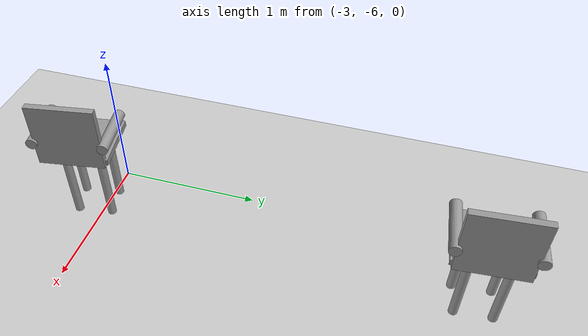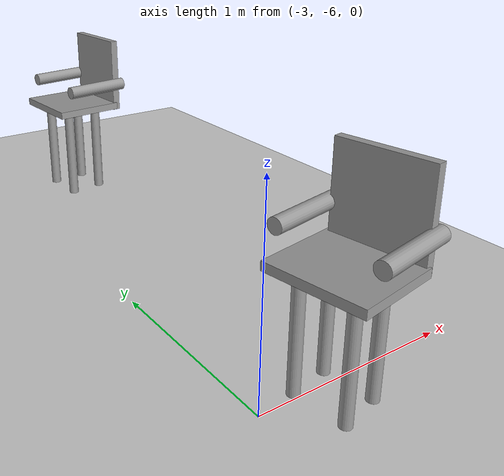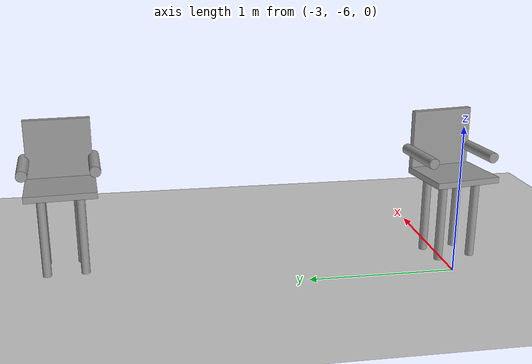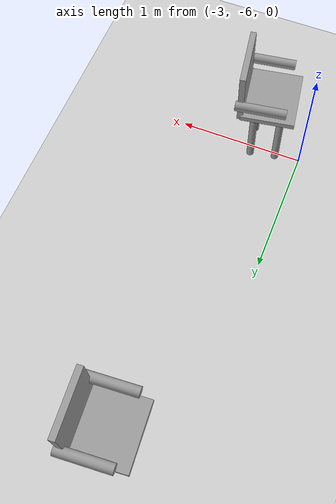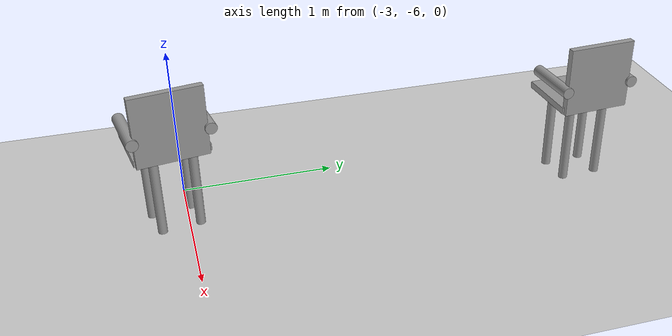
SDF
<sdf version="1.6">
 <world name="default">
  <model name="ground_plane">
   <static>1</static>
   <link name="link">
    <collision name="collision">
     <geometry><plane><normal>0 0 1</normal><size>100 100</size></plane></geometry>
     <surface>
      <contact><collide_bitmask>65535</collide_bitmask></contact>
      <friction><ode><mu>100</mu><mu2>50</mu2></ode></friction>
     </surface>
    </collision>
    <visual name="visual">
     <cast_shadows>0</cast_shadows>
     <geometry><plane><normal>0 0 1</normal><size>100 100</size></plane></geometry>
     <material>
      <script><uri>file://media/materials/scripts/gazebo.material</uri><name>Gazebo/Grey</name></script>
     </material>
    </visual>
   </link>
  </model>
  <model name="chair">
   <link name="link_4">
    <inertial>
     <mass>0.00194051</mass>
     <inertia>
      <ixx>5.14044e-05</ixx>
      <ixy>0</ixy>
      <ixz>0</ixz>
      <iyy>5.14044e-05</iyy>
      <iyz>0</iyz>
      <izz>8.34973e-07</izz>
     </inertia>
    </inertial>
    <pose>-0.140129 -0.127166 -0.209129 0 -0 0</pose>
    <visual name="visual">
     <geometry><cylinder><radius>0.0293355</radius><length>0.561516</length></cylinder></geometry>
     <material>
      <lighting>1</lighting>
      <script><uri>file://media/materials/scripts/gazebo.material</uri><name>Gazebo/Grey</name></script>
      <emissive>0 0 0 1</emissive>
     </material>
    </visual>
    <collision name="collision">
     <geometry><cylinder><radius>0.029336</radius><length>0.561516</length></cylinder></geometry>
     <surface>
      <friction>
       <ode><mu>1</mu><mu2>1</mu2><fdir1>0 0 0</fdir1><slip1>0</slip1><slip2>0</slip2></ode>
       <torsional>
        <coefficient>1</coefficient>
        <patch_radius>0</patch_radius>
        <surface_radius>0</surface_radius>
        <use_patch_radius>1</use_patch_radius>
        <ode><slip>0</slip></ode>
       </torsional>
      </friction>
      <bounce><restitution_coefficient>0</restitution_coefficient><threshold>1e+06</threshold></bounce>
      <contact>
       <collide_without_contact>0</collide_without_contact>
       <collide_without_contact_bitmask>1</collide_without_contact_bitmask>
       <collide_bitmask>1</collide_bitmask>
       <ode>
        <soft_cfm>0</soft_cfm>
        <soft_erp>0.2</soft_erp>
        <kp>1e+13</kp>
        <kd>1</kd>
        <max_vel>0.01</max_vel>
        <min_depth>0</min_depth>
       </ode>
       <bullet>
        <split_impulse>1</split_impulse>
        <split_impulse_penetration_threshold>-0.01</split_impulse_penetration_threshold>
        <soft_cfm>0</soft_cfm>
        <soft_erp>0.2</soft_erp>
        <kp>1e+13</kp>
        <kd>1</kd>
       </bullet>
      </contact>
     </surface>
    </collision>
   </link>
   <link name="link_4_clone">
    <inertial>
     <mass>0.00194051</mass>
     <inertia>
      <ixx>5.14044e-05</ixx>
      <ixy>0</ixy>
      <ixz>0</ixz>
      <iyy>5.14044e-05</iyy>
      <iyz>0</iyz>
      <izz>8.34973e-07</izz>
     </inertia>
    </inertial>
    <pose>-0.139565 0.126187 -0.209129 0 -0 0</pose>
    <visual name="visual">
     <geometry><cylinder><radius>0.0293355</radius><length>0.561516</length></cylinder></geometry>
     <material>
      <lighting>1</lighting>
      <script><uri>file://media/materials/scripts/gazebo.material</uri><name>Gazebo/Grey</name></script>
      <shader type="pixel"/>
      <emissive>0 0 0 1</emissive>
     </material>
    </visual>
    <collision name="collision">
     <geometry><cylinder><radius>0.029336</radius><length>0.561516</length></cylinder></geometry>
     <surface>
      <friction>
       <ode><mu>1</mu><mu2>1</mu2><fdir1>0 0 0</fdir1><slip1>0</slip1><slip2>0</slip2></ode>
       <torsional>
        <coefficient>1</coefficient>
        <patch_radius>0</patch_radius>
        <surface_radius>0</surface_radius>
        <use_patch_radius>1</use_patch_radius>
        <ode><slip>0</slip></ode>
       </torsional>
      </friction>
      <bounce><restitution_coefficient>0</restitution_coefficient><threshold>1e+06</threshold></bounce>
      <contact>
       <collide_without_contact>0</collide_without_contact>
       <collide_without_contact_bitmask>1</collide_without_contact_bitmask>
       <collide_bitmask>1</collide_bitmask>
       <ode>
        <soft_cfm>0</soft_cfm>
        <soft_erp>0.2</soft_erp>
        <kp>1e+13</kp>
        <kd>1</kd>
        <max_vel>0.01</max_vel>
        <min_depth>0</min_depth>
       </ode>
       <bullet>
        <split_impulse>1</split_impulse>
        <split_impulse_penetration_threshold>-0.01</split_impulse_penetration_threshold>
        <soft_cfm>0</soft_cfm>
        <soft_erp>0.2</soft_erp>
        <kp>1e+13</kp>
        <kd>1</kd>
       </bullet>
      </contact>
     </surface>
    </collision>
   </link>
   <link name="link_4_clone_0">
    <inertial>
     <mass>0.00194051</mass>
     <inertia>
      <ixx>5.14044e-05</ixx>
      <ixy>0</ixy>
      <ixz>0</ixz>
      <iyy>5.14044e-05</iyy>
      <iyz>0</iyz>
      <izz>8.34973e-07</izz>
     </inertia>
    </inertial>
    <pose>0.062929 0.13105 -0.209129 0 -0 0</pose>
    <visual name="visual">
     <geometry><cylinder><radius>0.0293355</radius><length>0.561516</length></cylinder></geometry>
     <material>
      <lighting>1</lighting>
      <script><uri>file://media/materials/scripts/gazebo.material</uri><name>Gazebo/Grey</name></script>
      <shader type="pixel"/>
      <emissive>0 0 0 1</emissive>
     </material>
    </visual>
    <collision name="collision">
     <geometry><cylinder><radius>0.029336</radius><length>0.561516</length></cylinder></geometry>
     <surface>
      <friction>
       <ode><mu>1</mu><mu2>1</mu2><fdir1>0 0 0</fdir1><slip1>0</slip1><slip2>0</slip2></ode>
       <torsional>
        <coefficient>1</coefficient>
        <patch_radius>0</patch_radius>
        <surface_radius>0</surface_radius>
        <use_patch_radius>1</use_patch_radius>
        <ode><slip>0</slip></ode>
       </torsional>
      </friction>
      <bounce><restitution_coefficient>0</restitution_coefficient><threshold>1e+06</threshold></bounce>
      <contact>
       <collide_without_contact>0</collide_without_contact>
       <collide_without_contact_bitmask>1</collide_without_contact_bitmask>
       <collide_bitmask>1</collide_bitmask>
       <ode>
        <soft_cfm>0</soft_cfm>
        <soft_erp>0.2</soft_erp>
        <kp>1e+13</kp>
        <kd>1</kd>
        <max_vel>0.01</max_vel>
        <min_depth>0</min_depth>
       </ode>
       <bullet>
        <split_impulse>1</split_impulse>
        <split_impulse_penetration_threshold>-0.01</split_impulse_penetration_threshold>
        <soft_cfm>0</soft_cfm>
        <soft_erp>0.2</soft_erp>
        <kp>1e+13</kp>
        <kd>1</kd>
       </bullet>
      </contact>
     </surface>
    </collision>
   </link>
   <link name="link_4_clone_1">
    <inertial>
     <mass>0.00194051</mass>
     <inertia>
      <ixx>5.14044e-05</ixx>
      <ixy>0</ixy>
      <ixz>0</ixz>
      <iyy>5.14044e-05</iyy>
      <iyz>0</iyz>
      <izz>8.34973e-07</izz>
     </inertia>
    </inertial>
    <pose>0.061641 -0.111934 -0.209129 0 -0 0</pose>
    <visual name="visual">
     <geometry><cylinder><radius>0.0293355</radius><length>0.561516</length></cylinder></geometry>
     <material>
      <lighting>1</lighting>
      <script><uri>file://media/materials/scripts/gazebo.material</uri><name>Gazebo/Grey</name></script>
      <shader type="pixel"/>
      <emissive>0 0 0 1</emissive>
     </material>
    </visual>
    <collision name="collision">
     <geometry><cylinder><radius>0.029336</radius><length>0.561516</length></cylinder></geometry>
     <surface>
      <friction>
       <ode><mu>1</mu><mu2>1</mu2><fdir1>0 0 0</fdir1><slip1>0</slip1><slip2>0</slip2></ode>
       <torsional>
        <coefficient>1</coefficient>
        <patch_radius>0</patch_radius>
        <surface_radius>0</surface_radius>
        <use_patch_radius>1</use_patch_radius>
        <ode><slip>0</slip></ode>
       </torsional>
      </friction>
      <bounce><restitution_coefficient>0</restitution_coefficient><threshold>1e+06</threshold></bounce>
      <contact>
       <collide_without_contact>0</collide_without_contact>
       <collide_without_contact_bitmask>1</collide_without_contact_bitmask>
       <collide_bitmask>1</collide_bitmask>
       <ode>
        <soft_cfm>0</soft_cfm>
        <soft_erp>0.2</soft_erp>
        <kp>1e+13</kp>
        <kd>1</kd>
        <max_vel>0.01</max_vel>
        <min_depth>0</min_depth>
       </ode>
       <bullet>
        <split_impulse>1</split_impulse>
        <split_impulse_penetration_threshold>-0.01</split_impulse_penetration_threshold>
        <soft_cfm>0</soft_cfm>
        <soft_erp>0.2</soft_erp>
        <kp>1e+13</kp>
        <kd>1</kd>
       </bullet>
      </contact>
     </surface>
    </collision>
   </link>
   <link name="link_5">
    <inertial>
     <mass>0.00816884</mass>
     <inertia>
      <ixx>0.00015002</ixx>
      <ixy>0</ixy>
      <ixz>0</ixz>
      <iyy>0.000115328</iyy>
      <iyz>0</iyz>
      <izz>0.000262862</izz>
     </inertia>
    </inertial>
    <pose>-0.041662 -0.005028 0.089077 0 -0 0</pose>
    <visual name="visual">
     <geometry><box><size>0.409378 0.467496 0.042729</size></box></geometry>
     <material>
      <lighting>1</lighting>
      <script><uri>file://media/materials/scripts/gazebo.material</uri><name>Gazebo/Grey</name></script>
      <emissive>0 0 0 1</emissive>
     </material>
    </visual>
    <collision name="collision">
     <geometry><box><size>0.409378 0.467496 0.042729</size></box></geometry>
     <surface>
      <friction>
       <ode><mu>1</mu><mu2>1</mu2><fdir1>0 0 0</fdir1><slip1>0</slip1><slip2>0</slip2></ode>
       <torsional>
        <coefficient>1</coefficient>
        <patch_radius>0</patch_radius>
        <surface_radius>0</surface_radius>
        <use_patch_radius>1</use_patch_radius>
        <ode><slip>0</slip></ode>
       </torsional>
      </friction>
      <bounce><restitution_coefficient>0</restitution_coefficient><threshold>1e+06</threshold></bounce>
      <contact>
       <collide_without_contact>0</collide_without_contact>
       <collide_without_contact_bitmask>1</collide_without_contact_bitmask>
       <collide_bitmask>1</collide_bitmask>
       <ode>
        <soft_cfm>0</soft_cfm>
        <soft_erp>0.2</soft_erp>
        <kp>1e+13</kp>
        <kd>1</kd>
        <max_vel>0.01</max_vel>
        <min_depth>0</min_depth>
       </ode>
       <bullet>
        <split_impulse>1</split_impulse>
        <split_impulse_penetration_threshold>-0.01</split_impulse_penetration_threshold>
        <soft_cfm>0</soft_cfm>
        <soft_erp>0.2</soft_erp>
        <kp>1e+13</kp>
        <kd>1</kd>
       </bullet>
      </contact>
     </surface>
    </collision>
   </link>
   <link name="link_6">
    <inertial>
     <mass>0.00855687</mass>
     <inertia>
      <ixx>0.000285159</ixx>
      <ixy>0</ixy>
      <ixz>0</ixz>
      <iyy>0.000146983</iyy>
      <iyz>0</iyz>
      <izz>0.000140925</izz>
     </inertia>
    </inertial>
    <pose>0.165697 -0.006458 0.287866 0 -0 0</pose>
    <visual name="visual">
     <geometry><box><size>0.0439 0.442383 0.451884</size></box></geometry>
     <material>
      <lighting>1</lighting>
      <script><uri>file://media/materials/scripts/gazebo.material</uri><name>Gazebo/Grey</name></script>
      <emissive>0 0 0 1</emissive>
     </material>
    </visual>
    <collision name="collision">
     <geometry><box><size>0.0439 0.442383 0.451884</size></box></geometry>
     <surface>
      <friction>
       <ode><mu>1</mu><mu2>1</mu2><fdir1>0 0 0</fdir1><slip1>0</slip1><slip2>0</slip2></ode>
       <torsional>
        <coefficient>1</coefficient>
        <patch_radius>0</patch_radius>
        <surface_radius>0</surface_radius>
        <use_patch_radius>1</use_patch_radius>
        <ode><slip>0</slip></ode>
       </torsional>
      </friction>
      <bounce><restitution_coefficient>0</restitution_coefficient><threshold>1e+06</threshold></bounce>
      <contact>
       <collide_without_contact>0</collide_without_contact>
       <collide_without_contact_bitmask>1</collide_without_contact_bitmask>
       <collide_bitmask>1</collide_bitmask>
       <ode>
        <soft_cfm>0</soft_cfm>
        <soft_erp>0.2</soft_erp>
        <kp>1e+13</kp>
        <kd>1</kd>
        <max_vel>0.01</max_vel>
        <min_depth>0</min_depth>
       </ode>
       <bullet>
        <split_impulse>1</split_impulse>
        <split_impulse_penetration_threshold>-0.01</split_impulse_penetration_threshold>
        <soft_cfm>0</soft_cfm>
        <soft_erp>0.2</soft_erp>
        <kp>1e+13</kp>
        <kd>1</kd>
       </bullet>
      </contact>
     </surface>
    </collision>
   </link>
   <link name="link_7">
    <inertial>
     <mass>0.00209129</mass>
     <inertia>
      <ixx>2.57536e-05</ixx>
      <ixy>0</ixy>
      <ixz>0</ixz>
      <iyy>2.57536e-05</iyy>
      <iyz>0</iyz>
      <izz>1.44551e-06</izz>
     </inertia>
    </inertial>
    <pose>0.0147 0.228665 0.230372 0 1.55081 0</pose>
    <visual name="visual">
     <geometry><cylinder><radius>0.0371808</radius><length>0.378984</length></cylinder></geometry>
     <material>
      <lighting>1</lighting>
      <script><uri>file://media/materials/scripts/gazebo.material</uri><name>Gazebo/Grey</name></script>
      <emissive>0 0 0 1</emissive>
     </material>
    </visual>
    <collision name="collision">
     <geometry><cylinder><radius>0.037181</radius><length>0.378984</length></cylinder></geometry>
     <surface>
      <friction>
       <ode><mu>1</mu><mu2>1</mu2><fdir1>0 0 0</fdir1><slip1>0</slip1><slip2>0</slip2></ode>
       <torsional>
        <coefficient>1</coefficient>
        <patch_radius>0</patch_radius>
        <surface_radius>0</surface_radius>
        <use_patch_radius>1</use_patch_radius>
        <ode><slip>0</slip></ode>
       </torsional>
      </friction>
      <bounce><restitution_coefficient>0</restitution_coefficient><threshold>1e+06</threshold></bounce>
      <contact>
       <collide_without_contact>0</collide_without_contact>
       <collide_without_contact_bitmask>1</collide_without_contact_bitmask>
       <collide_bitmask>1</collide_bitmask>
       <ode>
        <soft_cfm>0</soft_cfm>
        <soft_erp>0.2</soft_erp>
        <kp>1e+13</kp>
        <kd>1</kd>
        <max_vel>0.01</max_vel>
        <min_depth>0</min_depth>
       </ode>
       <bullet>
        <split_impulse>1</split_impulse>
        <split_impulse_penetration_threshold>-0.01</split_impulse_penetration_threshold>
        <soft_cfm>0</soft_cfm>
        <soft_erp>0.2</soft_erp>
        <kp>1e+13</kp>
        <kd>1</kd>
       </bullet>
      </contact>
     </surface>
    </collision>
   </link>
   <link name="link_7_clone">
    <inertial>
     <mass>0.00209129</mass>
     <inertia>
      <ixx>2.57536e-05</ixx>
      <ixy>0</ixy>
      <ixz>0</ixz>
      <iyy>2.57536e-05</iyy>
      <iyz>0</iyz>
      <izz>1.44551e-06</izz>
     </inertia>
    </inertial>
    <pose>0.01639 -0.235319 0.229201 0 1.55081 0</pose>
    <visual name="visual">
     <geometry><cylinder><radius>0.0371808</radius><length>0.378984</length></cylinder></geometry>
     <material>
      <lighting>1</lighting>
      <script><uri>file://media/materials/scripts/gazebo.material</uri><name>Gazebo/Grey</name></script>
      <shader type="pixel"/>
      <emissive>0 0 0 1</emissive>
     </material>
    </visual>
    <collision name="collision">
     <geometry><cylinder><radius>0.037181</radius><length>0.378984</length></cylinder></geometry>
     <surface>
      <friction>
       <ode><mu>1</mu><mu2>1</mu2><fdir1>0 0 0</fdir1><slip1>0</slip1><slip2>0</slip2></ode>
       <torsional>
        <coefficient>1</coefficient>
        <patch_radius>0</patch_radius>
        <surface_radius>0</surface_radius>
        <use_patch_radius>1</use_patch_radius>
        <ode><slip>0</slip></ode>
       </torsional>
      </friction>
      <bounce><restitution_coefficient>0</restitution_coefficient><threshold>1e+06</threshold></bounce>
      <contact>
       <collide_without_contact>0</collide_without_contact>
       <collide_without_contact_bitmask>1</collide_without_contact_bitmask>
       <collide_bitmask>1</collide_bitmask>
       <ode>
        <soft_cfm>0</soft_cfm>
        <soft_erp>0.2</soft_erp>
        <kp>1e+13</kp>
        <kd>1</kd>
        <max_vel>0.01</max_vel>
        <min_depth>0</min_depth>
       </ode>
       <bullet>
        <split_impulse>1</split_impulse>
        <split_impulse_penetration_threshold>-0.01</split_impulse_penetration_threshold>
        <soft_cfm>0</soft_cfm>
        <soft_erp>0.2</soft_erp>
        <kp>1e+13</kp>
        <kd>1</kd>
       </bullet>
      </contact>
     </surface>
    </collision>
   </link>
   <joint name="link_5_JOINT_2" type="fixed">
    <parent>link_5</parent>
    <child>link_4_clone_1</child>
    <physics>
     <ode><limit><cfm>0</cfm><erp>0.2</erp></limit><suspension><cfm>0</cfm><erp>0.2</erp></suspension></ode>
    </physics>
   </joint>
   <joint name="link_5_JOINT_3" type="fixed">
    <parent>link_5</parent>
    <child>link_4</child>
    <physics>
     <ode><limit><cfm>0</cfm><erp>0.2</erp></limit><suspension><cfm>0</cfm><erp>0.2</erp></suspension></ode>
    </physics>
   </joint>
   <joint name="link_5_JOINT_4" type="fixed">
    <parent>link_5</parent>
    <child>link_4_clone_0</child>
    <physics>
     <ode><limit><cfm>0</cfm><erp>0.2</erp></limit><suspension><cfm>0</cfm><erp>0.2</erp></suspension></ode>
    </physics>
   </joint>
   <joint name="link_5_JOINT_5" type="fixed">
    <parent>link_5</parent>
    <child>link_4_clone</child>
    <physics>
     <ode><limit><cfm>0</cfm><erp>0.2</erp></limit><suspension><cfm>0</cfm><erp>0.2</erp></suspension></ode>
    </physics>
   </joint>
   <joint name="link_5_JOINT_6" type="fixed">
    <parent>link_5</parent>
    <child>link_6</child>
    <physics>
     <ode><limit><cfm>0</cfm><erp>0.2</erp></limit><suspension><cfm>0</cfm><erp>0.2</erp></suspension></ode>
    </physics>
   </joint>
   <joint name="link_5_JOINT_7" type="fixed">
    <parent>link_5</parent>
    <child>link_7</child>
    <physics>
     <ode><limit><cfm>0</cfm><erp>0.2</erp></limit><suspension><cfm>0</cfm><erp>0.2</erp></suspension></ode>
    </physics>
   </joint>
   <joint name="link_5_JOINT_8" type="fixed">
    <parent>link_5</parent>
    <child>link_7_clone</child>
    <physics>
     <ode><limit><cfm>0</cfm><erp>0.2</erp></limit><suspension><cfm>0</cfm><erp>0.2</erp></suspension></ode>
    </physics>
   </joint>
   <static>0</static>
   <pose>-2.51324 -3.39211 0.489878 -0 3.3e-05 0.07622</pose>
  </model>
  <model name="chair_clone_2">
   <link name="link_4">
    <inertial>
     <mass>0.00194051</mass>
     <inertia>
      <ixx>5.14044e-05</ixx>
      <ixy>0</ixy>
      <ixz>0</ixz>
      <iyy>5.14044e-05</iyy>
      <iyz>0</iyz>
      <izz>8.34973e-07</izz>
     </inertia>
    </inertial>
    <pose>-0.140129 -0.127166 -0.209129 0 -0 0</pose>
    <visual name="visual">
     <geometry><cylinder><radius>0.0293355</radius><length>0.561516</length></cylinder></geometry>
     <material>
      <lighting>1</lighting>
      <script><uri>file://media/materials/scripts/gazebo.material</uri><name>Gazebo/Grey</name></script>
      <emissive>0 0 0 1</emissive>
     </material>
    </visual>
    <collision name="collision">
     <geometry><cylinder><radius>0.029336</radius><length>0.561516</length></cylinder></geometry>
     <surface>
      <friction>
       <ode><mu>1</mu><mu2>1</mu2><fdir1>0 0 0</fdir1><slip1>0</slip1><slip2>0</slip2></ode>
       <torsional>
        <coefficient>1</coefficient>
        <patch_radius>0</patch_radius>
        <surface_radius>0</surface_radius>
        <use_patch_radius>1</use_patch_radius>
        <ode><slip>0</slip></ode>
       </torsional>
      </friction>
      <bounce><restitution_coefficient>0</restitution_coefficient><threshold>1e+06</threshold></bounce>
      <contact>
       <collide_without_contact>0</collide_without_contact>
       <collide_without_contact_bitmask>1</collide_without_contact_bitmask>
       <collide_bitmask>1</collide_bitmask>
       <ode>
        <soft_cfm>0</soft_cfm>
        <soft_erp>0.2</soft_erp>
        <kp>1e+13</kp>
        <kd>1</kd>
        <max_vel>0.01</max_vel>
        <min_depth>0</min_depth>
       </ode>
       <bullet>
        <split_impulse>1</split_impulse>
        <split_impulse_penetration_threshold>-0.01</split_impulse_penetration_threshold>
        <soft_cfm>0</soft_cfm>
        <soft_erp>0.2</soft_erp>
        <kp>1e+13</kp>
        <kd>1</kd>
       </bullet>
      </contact>
     </surface>
    </collision>
   </link>
   <link name="link_4_clone">
    <inertial>
     <mass>0.00194051</mass>
     <inertia>
      <ixx>5.14044e-05</ixx>
      <ixy>0</ixy>
      <ixz>0</ixz>
      <iyy>5.14044e-05</iyy>
      <iyz>0</iyz>
      <izz>8.34973e-07</izz>
     </inertia>
    </inertial>
    <pose>-0.139565 0.126187 -0.209129 0 -0 0</pose>
    <visual name="visual">
     <geometry><cylinder><radius>0.0293355</radius><length>0.561516</length></cylinder></geometry>
     <material>
      <lighting>1</lighting>
      <script><uri>file://media/materials/scripts/gazebo.material</uri><name>Gazebo/Grey</name></script>
      <shader type="pixel"/>
      <emissive>0 0 0 1</emissive>
     </material>
    </visual>
    <collision name="collision">
     <geometry><cylinder><radius>0.029336</radius><length>0.561516</length></cylinder></geometry>
     <surface>
      <friction>
       <ode><mu>1</mu><mu2>1</mu2><fdir1>0 0 0</fdir1><slip1>0</slip1><slip2>0</slip2></ode>
       <torsional>
        <coefficient>1</coefficient>
        <patch_radius>0</patch_radius>
        <surface_radius>0</surface_radius>
        <use_patch_radius>1</use_patch_radius>
        <ode><slip>0</slip></ode>
       </torsional>
      </friction>
      <bounce><restitution_coefficient>0</restitution_coefficient><threshold>1e+06</threshold></bounce>
      <contact>
       <collide_without_contact>0</collide_without_contact>
       <collide_without_contact_bitmask>1</collide_without_contact_bitmask>
       <collide_bitmask>1</collide_bitmask>
       <ode>
        <soft_cfm>0</soft_cfm>
        <soft_erp>0.2</soft_erp>
        <kp>1e+13</kp>
        <kd>1</kd>
        <max_vel>0.01</max_vel>
        <min_depth>0</min_depth>
       </ode>
       <bullet>
        <split_impulse>1</split_impulse>
        <split_impulse_penetration_threshold>-0.01</split_impulse_penetration_threshold>
        <soft_cfm>0</soft_cfm>
        <soft_erp>0.2</soft_erp>
        <kp>1e+13</kp>
        <kd>1</kd>
       </bullet>
      </contact>
     </surface>
    </collision>
   </link>
   <link name="link_4_clone_0">
    <inertial>
     <mass>0.00194051</mass>
     <inertia>
      <ixx>5.14044e-05</ixx>
      <ixy>0</ixy>
      <ixz>0</ixz>
      <iyy>5.14044e-05</iyy>
      <iyz>0</iyz>
      <izz>8.34973e-07</izz>
     </inertia>
    </inertial>
    <pose>0.062929 0.13105 -0.209129 0 -0 0</pose>
    <visual name="visual">
     <geometry><cylinder><radius>0.0293355</radius><length>0.561516</length></cylinder></geometry>
     <material>
      <lighting>1</lighting>
      <script><uri>file://media/materials/scripts/gazebo.material</uri><name>Gazebo/Grey</name></script>
      <shader type="pixel"/>
      <emissive>0 0 0 1</emissive>
     </material>
    </visual>
    <collision name="collision">
     <geometry><cylinder><radius>0.029336</radius><length>0.561516</length></cylinder></geometry>
     <surface>
      <friction>
       <ode><mu>1</mu><mu2>1</mu2><fdir1>0 0 0</fdir1><slip1>0</slip1><slip2>0</slip2></ode>
       <torsional>
        <coefficient>1</coefficient>
        <patch_radius>0</patch_radius>
        <surface_radius>0</surface_radius>
        <use_patch_radius>1</use_patch_radius>
        <ode><slip>0</slip></ode>
       </torsional>
      </friction>
      <bounce><restitution_coefficient>0</restitution_coefficient><threshold>1e+06</threshold></bounce>
      <contact>
       <collide_without_contact>0</collide_without_contact>
       <collide_without_contact_bitmask>1</collide_without_contact_bitmask>
       <collide_bitmask>1</collide_bitmask>
       <ode>
        <soft_cfm>0</soft_cfm>
        <soft_erp>0.2</soft_erp>
        <kp>1e+13</kp>
        <kd>1</kd>
        <max_vel>0.01</max_vel>
        <min_depth>0</min_depth>
       </ode>
       <bullet>
        <split_impulse>1</split_impulse>
        <split_impulse_penetration_threshold>-0.01</split_impulse_penetration_threshold>
        <soft_cfm>0</soft_cfm>
        <soft_erp>0.2</soft_erp>
        <kp>1e+13</kp>
        <kd>1</kd>
       </bullet>
      </contact>
     </surface>
    </collision>
   </link>
   <link name="link_4_clone_1">
    <inertial>
     <mass>0.00194051</mass>
     <inertia>
      <ixx>5.14044e-05</ixx>
      <ixy>0</ixy>
      <ixz>0</ixz>
      <iyy>5.14044e-05</iyy>
      <iyz>0</iyz>
      <izz>8.34973e-07</izz>
     </inertia>
    </inertial>
    <pose>0.061641 -0.111934 -0.209129 0 -0 0</pose>
    <visual name="visual">
     <geometry><cylinder><radius>0.0293355</radius><length>0.561516</length></cylinder></geometry>
     <material>
      <lighting>1</lighting>
      <script><uri>file://media/materials/scripts/gazebo.material</uri><name>Gazebo/Grey</name></script>
      <shader type="pixel"/>
      <emissive>0 0 0 1</emissive>
     </material>
    </visual>
    <collision name="collision">
     <geometry><cylinder><radius>0.029336</radius><length>0.561516</length></cylinder></geometry>
     <surface>
      <friction>
       <ode><mu>1</mu><mu2>1</mu2><fdir1>0 0 0</fdir1><slip1>0</slip1><slip2>0</slip2></ode>
       <torsional>
        <coefficient>1</coefficient>
        <patch_radius>0</patch_radius>
        <surface_radius>0</surface_radius>
        <use_patch_radius>1</use_patch_radius>
        <ode><slip>0</slip></ode>
       </torsional>
      </friction>
      <bounce><restitution_coefficient>0</restitution_coefficient><threshold>1e+06</threshold></bounce>
      <contact>
       <collide_without_contact>0</collide_without_contact>
       <collide_without_contact_bitmask>1</collide_without_contact_bitmask>
       <collide_bitmask>1</collide_bitmask>
       <ode>
        <soft_cfm>0</soft_cfm>
        <soft_erp>0.2</soft_erp>
        <kp>1e+13</kp>
        <kd>1</kd>
        <max_vel>0.01</max_vel>
        <min_depth>0</min_depth>
       </ode>
       <bullet>
        <split_impulse>1</split_impulse>
        <split_impulse_penetration_threshold>-0.01</split_impulse_penetration_threshold>
        <soft_cfm>0</soft_cfm>
        <soft_erp>0.2</soft_erp>
        <kp>1e+13</kp>
        <kd>1</kd>
       </bullet>
      </contact>
     </surface>
    </collision>
   </link>
   <link name="link_5">
    <inertial>
     <mass>0.00816884</mass>
     <inertia>
      <ixx>0.00015002</ixx>
      <ixy>0</ixy>
      <ixz>0</ixz>
      <iyy>0.000115328</iyy>
      <iyz>0</iyz>
      <izz>0.000262862</izz>
     </inertia>
    </inertial>
    <pose>-0.041662 -0.005028 0.089077 0 -0 0</pose>
    <visual name="visual">
     <geometry><box><size>0.409378 0.467496 0.042729</size></box></geometry>
     <material>
      <lighting>1</lighting>
      <script><uri>file://media/materials/scripts/gazebo.material</uri><name>Gazebo/Grey</name></script>
      <emissive>0 0 0 1</emissive>
     </material>
    </visual>
    <collision name="collision">
     <geometry><box><size>0.409378 0.467496 0.042729</size></box></geometry>
     <surface>
      <friction>
       <ode><mu>1</mu><mu2>1</mu2><fdir1>0 0 0</fdir1><slip1>0</slip1><slip2>0</slip2></ode>
       <torsional>
        <coefficient>1</coefficient>
        <patch_radius>0</patch_radius>
        <surface_radius>0</surface_radius>
        <use_patch_radius>1</use_patch_radius>
        <ode><slip>0</slip></ode>
       </torsional>
      </friction>
      <bounce><restitution_coefficient>0</restitution_coefficient><threshold>1e+06</threshold></bounce>
      <contact>
       <collide_without_contact>0</collide_without_contact>
       <collide_without_contact_bitmask>1</collide_without_contact_bitmask>
       <collide_bitmask>1</collide_bitmask>
       <ode>
        <soft_cfm>0</soft_cfm>
        <soft_erp>0.2</soft_erp>
        <kp>1e+13</kp>
        <kd>1</kd>
        <max_vel>0.01</max_vel>
        <min_depth>0</min_depth>
       </ode>
       <bullet>
        <split_impulse>1</split_impulse>
        <split_impulse_penetration_threshold>-0.01</split_impulse_penetration_threshold>
        <soft_cfm>0</soft_cfm>
        <soft_erp>0.2</soft_erp>
        <kp>1e+13</kp>
        <kd>1</kd>
       </bullet>
      </contact>
     </surface>
    </collision>
   </link>
   <link name="link_6">
    <inertial>
     <mass>0.00855687</mass>
     <inertia>
      <ixx>0.000285159</ixx>
      <ixy>0</ixy>
      <ixz>0</ixz>
      <iyy>0.000146983</iyy>
      <iyz>0</iyz>
      <izz>0.000140925</izz>
     </inertia>
    </inertial>
    <pose>0.165697 -0.006458 0.287866 0 -0 0</pose>
    <visual name="visual">
     <geometry><box><size>0.0439 0.442383 0.451884</size></box></geometry>
     <material>
      <lighting>1</lighting>
      <script><uri>file://media/materials/scripts/gazebo.material</uri><name>Gazebo/Grey</name></script>
      <emissive>0 0 0 1</emissive>
     </material>
    </visual>
    <collision name="collision">
     <geometry><box><size>0.0439 0.442383 0.451884</size></box></geometry>
     <surface>
      <friction>
       <ode><mu>1</mu><mu2>1</mu2><fdir1>0 0 0</fdir1><slip1>0</slip1><slip2>0</slip2></ode>
       <torsional>
        <coefficient>1</coefficient>
        <patch_radius>0</patch_radius>
        <surface_radius>0</surface_radius>
        <use_patch_radius>1</use_patch_radius>
        <ode><slip>0</slip></ode>
       </torsional>
      </friction>
      <bounce><restitution_coefficient>0</restitution_coefficient><threshold>1e+06</threshold></bounce>
      <contact>
       <collide_without_contact>0</collide_without_contact>
       <collide_without_contact_bitmask>1</collide_without_contact_bitmask>
       <collide_bitmask>1</collide_bitmask>
       <ode>
        <soft_cfm>0</soft_cfm>
        <soft_erp>0.2</soft_erp>
        <kp>1e+13</kp>
        <kd>1</kd>
        <max_vel>0.01</max_vel>
        <min_depth>0</min_depth>
       </ode>
       <bullet>
        <split_impulse>1</split_impulse>
        <split_impulse_penetration_threshold>-0.01</split_impulse_penetration_threshold>
        <soft_cfm>0</soft_cfm>
        <soft_erp>0.2</soft_erp>
        <kp>1e+13</kp>
        <kd>1</kd>
       </bullet>
      </contact>
     </surface>
    </collision>
   </link>
   <link name="link_7">
    <inertial>
     <mass>0.00209129</mass>
     <inertia>
      <ixx>2.57536e-05</ixx>
      <ixy>0</ixy>
      <ixz>0</ixz>
      <iyy>2.57536e-05</iyy>
      <iyz>0</iyz>
      <izz>1.44551e-06</izz>
     </inertia>
    </inertial>
    <pose>0.0147 0.228665 0.230372 0 1.55081 0</pose>
    <visual name="visual">
     <geometry><cylinder><radius>0.0371808</radius><length>0.378984</length></cylinder></geometry>
     <material>
      <lighting>1</lighting>
      <script><uri>file://media/materials/scripts/gazebo.material</uri><name>Gazebo/Grey</name></script>
      <emissive>0 0 0 1</emissive>
     </material>
    </visual>
    <collision name="collision">
     <geometry><cylinder><radius>0.037181</radius><length>0.378984</length></cylinder></geometry>
     <surface>
      <friction>
       <ode><mu>1</mu><mu2>1</mu2><fdir1>0 0 0</fdir1><slip1>0</slip1><slip2>0</slip2></ode>
       <torsional>
        <coefficient>1</coefficient>
        <patch_radius>0</patch_radius>
        <surface_radius>0</surface_radius>
        <use_patch_radius>1</use_patch_radius>
        <ode><slip>0</slip></ode>
       </torsional>
      </friction>
      <bounce><restitution_coefficient>0</restitution_coefficient><threshold>1e+06</threshold></bounce>
      <contact>
       <collide_without_contact>0</collide_without_contact>
       <collide_without_contact_bitmask>1</collide_without_contact_bitmask>
       <collide_bitmask>1</collide_bitmask>
       <ode>
        <soft_cfm>0</soft_cfm>
        <soft_erp>0.2</soft_erp>
        <kp>1e+13</kp>
        <kd>1</kd>
        <max_vel>0.01</max_vel>
        <min_depth>0</min_depth>
       </ode>
       <bullet>
        <split_impulse>1</split_impulse>
        <split_impulse_penetration_threshold>-0.01</split_impulse_penetration_threshold>
        <soft_cfm>0</soft_cfm>
        <soft_erp>0.2</soft_erp>
        <kp>1e+13</kp>
        <kd>1</kd>
       </bullet>
      </contact>
     </surface>
    </collision>
   </link>
   <link name="link_7_clone">
    <inertial>
     <mass>0.00209129</mass>
     <inertia>
      <ixx>2.57536e-05</ixx>
      <ixy>0</ixy>
      <ixz>0</ixz>
      <iyy>2.57536e-05</iyy>
      <iyz>0</iyz>
      <izz>1.44551e-06</izz>
     </inertia>
    </inertial>
    <pose>0.01639 -0.235319 0.229201 0 1.55081 0</pose>
    <visual name="visual">
     <geometry><cylinder><radius>0.0371808</radius><length>0.378984</length></cylinder></geometry>
     <material>
      <lighting>1</lighting>
      <script><uri>file://media/materials/scripts/gazebo.material</uri><name>Gazebo/Grey</name></script>
      <shader type="pixel"/>
      <emissive>0 0 0 1</emissive>
     </material>
    </visual>
    <collision name="collision">
     <geometry><cylinder><radius>0.037181</radius><length>0.378984</length></cylinder></geometry>
     <surface>
      <friction>
       <ode><mu>1</mu><mu2>1</mu2><fdir1>0 0 0</fdir1><slip1>0</slip1><slip2>0</slip2></ode>
       <torsional>
        <coefficient>1</coefficient>
        <patch_radius>0</patch_radius>
        <surface_radius>0</surface_radius>
        <use_patch_radius>1</use_patch_radius>
        <ode><slip>0</slip></ode>
       </torsional>
      </friction>
      <bounce><restitution_coefficient>0</restitution_coefficient><threshold>1e+06</threshold></bounce>
      <contact>
       <collide_without_contact>0</collide_without_contact>
       <collide_without_contact_bitmask>1</collide_without_contact_bitmask>
       <collide_bitmask>1</collide_bitmask>
       <ode>
        <soft_cfm>0</soft_cfm>
        <soft_erp>0.2</soft_erp>
        <kp>1e+13</kp>
        <kd>1</kd>
        <max_vel>0.01</max_vel>
        <min_depth>0</min_depth>
       </ode>
       <bullet>
        <split_impulse>1</split_impulse>
        <split_impulse_penetration_threshold>-0.01</split_impulse_penetration_threshold>
        <soft_cfm>0</soft_cfm>
        <soft_erp>0.2</soft_erp>
        <kp>1e+13</kp>
        <kd>1</kd>
       </bullet>
      </contact>
     </surface>
    </collision>
   </link>
   <joint name="link_5_JOINT_2" type="fixed">
    <parent>link_5</parent>
    <child>link_4_clone_1</child>
    <physics>
     <ode><limit><cfm>0</cfm><erp>0.2</erp></limit><suspension><cfm>0</cfm><erp>0.2</erp></suspension></ode>
    </physics>
   </joint>
   <joint name="link_5_JOINT_3" type="fixed">
    <parent>link_5</parent>
    <child>link_4</child>
    <physics>
     <ode><limit><cfm>0</cfm><erp>0.2</erp></limit><suspension><cfm>0</cfm><erp>0.2</erp></suspension></ode>
    </physics>
   </joint>
   <joint name="link_5_JOINT_4" type="fixed">
    <parent>link_5</parent>
    <child>link_4_clone_0</child>
    <physics>
     <ode><limit><cfm>0</cfm><erp>0.2</erp></limit><suspension><cfm>0</cfm><erp>0.2</erp></suspension></ode>
    </physics>
   </joint>
   <joint name="link_5_JOINT_5" type="fixed">
    <parent>link_5</parent>
    <child>link_4_clone</child>
    <physics>
     <ode><limit><cfm>0</cfm><erp>0.2</erp></limit><suspension><cfm>0</cfm><erp>0.2</erp></suspension></ode>
    </physics>
   </joint>
   <joint name="link_5_JOINT_6" type="fixed">
    <parent>link_5</parent>
    <child>link_6</child>
    <physics>
     <ode><limit><cfm>0</cfm><erp>0.2</erp></limit><suspension><cfm>0</cfm><erp>0.2</erp></suspension></ode>
    </physics>
   </joint>
   <joint name="link_5_JOINT_7" type="fixed">
    <parent>link_5</parent>
    <child>link_7</child>
    <physics>
     <ode><limit><cfm>0</cfm><erp>0.2</erp></limit><suspension><cfm>0</cfm><erp>0.2</erp></suspension></ode>
    </physics>
   </joint>
   <joint name="link_5_JOINT_8" type="fixed">
    <parent>link_5</parent>
    <child>link_7_clone</child>
    <physics>
     <ode><limit><cfm>0</cfm><erp>0.2</erp></limit><suspension><cfm>0</cfm><erp>0.2</erp></suspension></ode>
    </physics>
   </joint>
   <static>0</static>
   <pose>-2.64379 -6.07361 0.489878 -0 3.3e-05 0.163796</pose>
  </model>
 </world>
</sdf>
